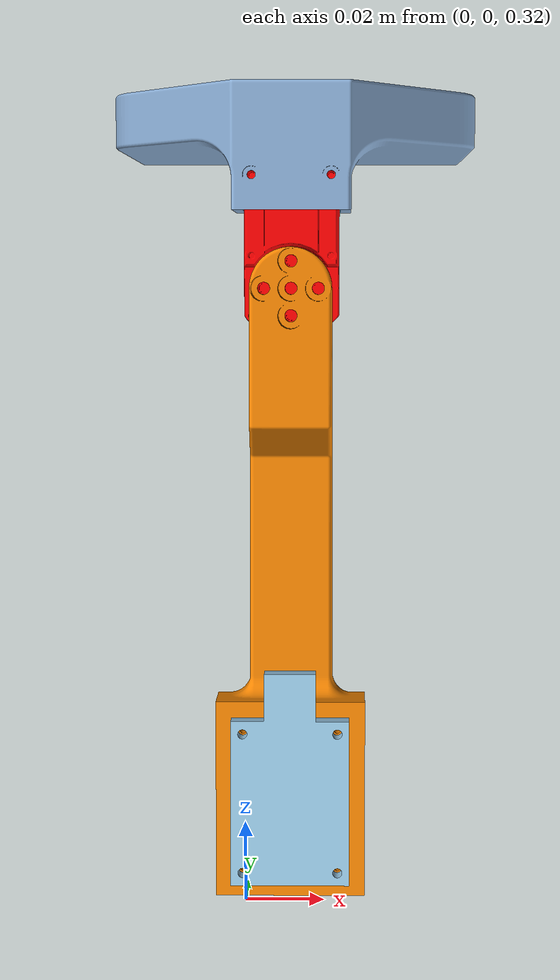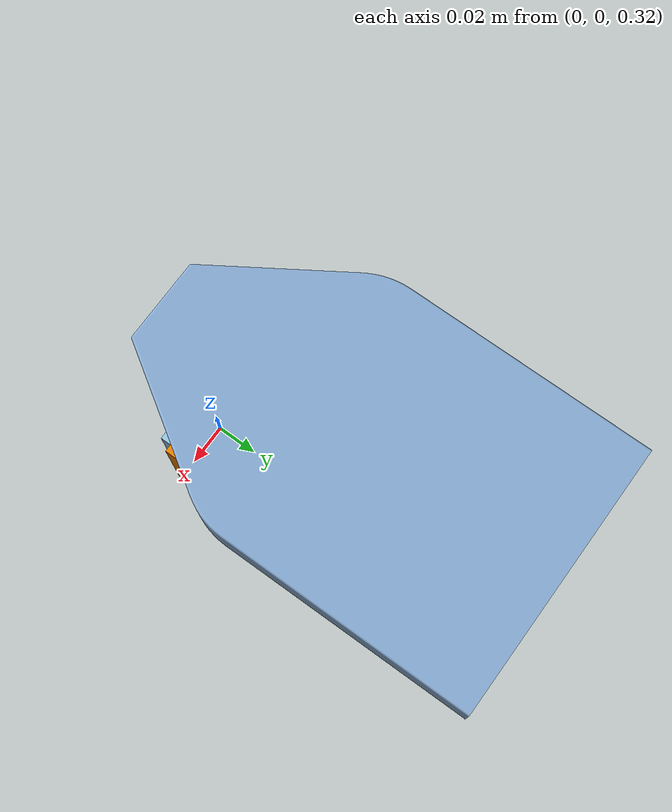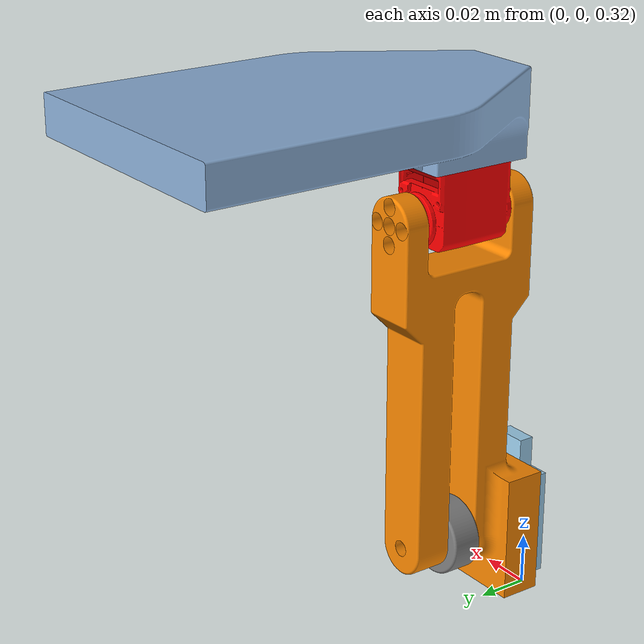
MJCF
<?xml version="1.0" ?>
<!-- Generated using onshape-to-robot -->
<!-- Onshape https://cad.onshape.com/documents/08933ab28552466369dd45f5/v/1c89bc95f2db2850ca32f781/e/79536a7a5ce948f49fbe9218 -->
<mujoco model="testbench">
  <compiler angle="radian" meshdir="assets" autolimits="true"/>
  <default>
    <default class="testbench">
      <joint frictionloss="0.1" armature="0.005"/>
      <position kp="50" dampratio="1"/>
      <default class="visual">
        <geom type="mesh" contype="0" conaffinity="0" group="2"/>
      </default>
      <default class="collision">
        <geom group="3"/>
      </default>
    </default>
  </default>
  <!-- Additional imu_sensor.xml -->
  <sensor>
    <accelerometer name="imu_acc" site="imu_site" noise="0.01"/>
    <gyro name="imu_gyro" site="imu_site" noise="0.01"/>
    <magnetometer name="imu_mag" site="imu_site" noise="0.05"/>
    <framepos name="base_link_pos" objtype="site" objname="imu_site"/>
    <framequat name="base_link_quat" objtype="site" objname="imu_site"/>
    <framelinvel name="base_link_vel" objtype="site" objname="imu_site"/>
    <frameangvel name="base_link_ang_vel" objtype="site" objname="imu_site"/>
  </sensor>
  <worldbody>
    <!-- Link motor_mount -->
    <body name="motor_mount" pos="0 0 0.3" quat="1 0 0 0" childclass="testbench">
      <inertial pos="0.011359 0.0790473 0.213984" mass="0.341126" fullinertia="0.000799198 0.00027571 0.000907808 -5.09171e-08 -5.66817e-08 -0.00012762"/>
      <!-- Part motor_mount -->
      <geom type="mesh" class="visual" pos="0.0113618 0.0117253 0.176057" quat="1 0 0 0" mesh="motor_mount" material="motor_mount_material"/>
      <!-- Part sts3215 -->
      <geom type="mesh" class="visual" pos="0.0113618 0.0304755 0.176057" quat="0.5 0.5 -0.5 0.5" mesh="sts3215" material="sts3215_material"/>
      <!-- Link motor_weight_mount -->
      <body name="motor_weight_mount" pos="0.0113618 0.0121756 0.176057" quat="0.707107 -0.707107 0 4.32978e-17">
        <!-- Joint from motor_mount to motor_weight_mount -->
        <joint axis="0 0 1" name="servo_out" type="hinge" range="-1.5707963267948966 1.5707963267948966"/>
        <inertial pos="5.0223e-10 0.0841529 0.0130883" mass="0.161583" fullinertia="0.000374781 5.97011e-05 0.000334123 2.11771e-12 8.70757e-13 4.1884e-05"/>
        <!-- Part imu -->
        <geom type="mesh" class="visual" pos="0 0.13 -0.012675" quat="1.28347e-16 -0.707107 -0.707107 -4.17513e-17" mesh="imu" material="imu_material"/>
        <!-- Part motor_weight_mount -->
        <geom type="mesh" class="visual" pos="0 0 -1.76346e-18" quat="0.707107 0.707107 -0 -3.84093e-49" mesh="motor_weight_mount" material="motor_weight_mount_material"/>
        <!-- Part weight_plug -->
        <geom type="mesh" class="visual" pos="0 0 0.0005" quat="0.707107 0.707107 -0 -3.84093e-49" mesh="weight_plug" material="weight_plug_material"/>
        <!-- Frame imu_site -->
        <site group="3" name="imu_site" pos="0 0.13 -0.012425" quat="8.5899e-17 -0.707107 -0.707107 -8.5899e-17"/>
      </body>
    </body>
  </worldbody>
  <asset>
    <mesh file="weight_plug.stl"/>
    <mesh file="imu.stl"/>
    <mesh file="motor_mount.stl"/>
    <mesh file="motor_weight_mount.stl"/>
    <mesh file="sts3215.stl"/>
    <material name="motor_mount_material" rgba="0.541176 0.682353 0.839216 1"/>
    <material name="sts3215_material" rgba="1 0 0 1"/>
    <material name="imu_material" rgba="0.615686 0.811765 0.929412 1"/>
    <material name="motor_weight_mount_material" rgba="0.972549 0.529412 0.00392157 1"/>
    <material name="weight_plug_material" rgba="0.498039 0.498039 0.498039 1"/>
  </asset>
  <actuator>
    <position class="testbench" name="servo_out" joint="servo_out" inheritrange="1"/>
  </actuator>
  <equality/>
</mujoco>
